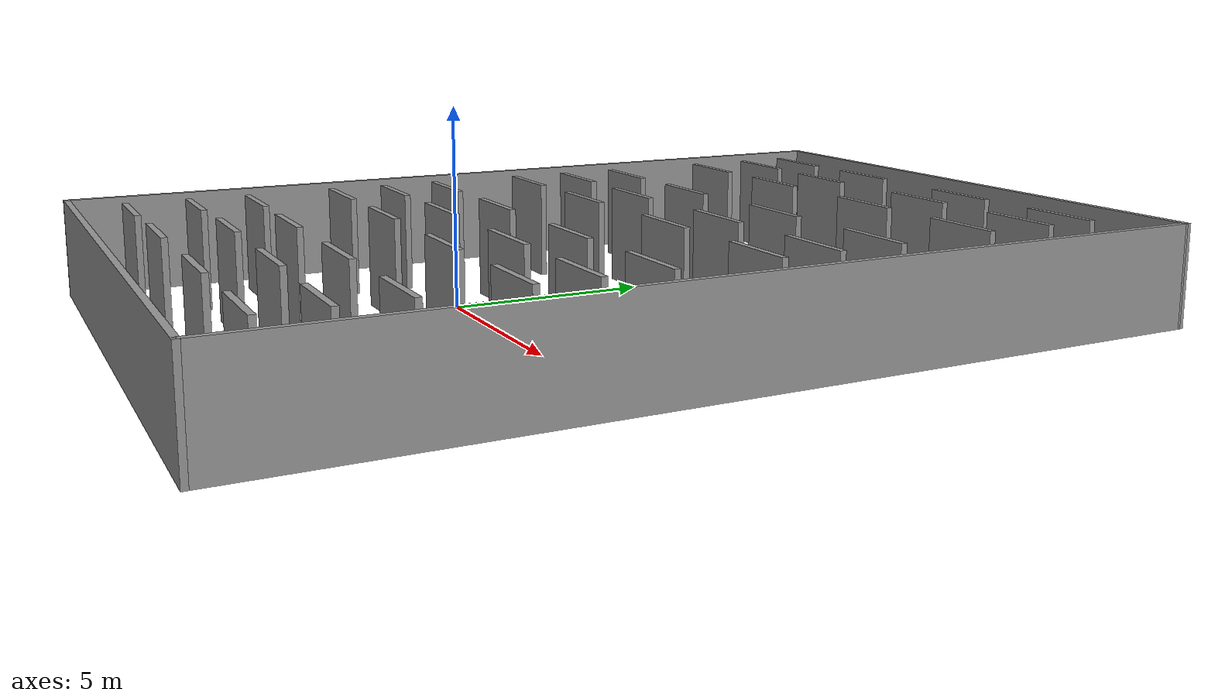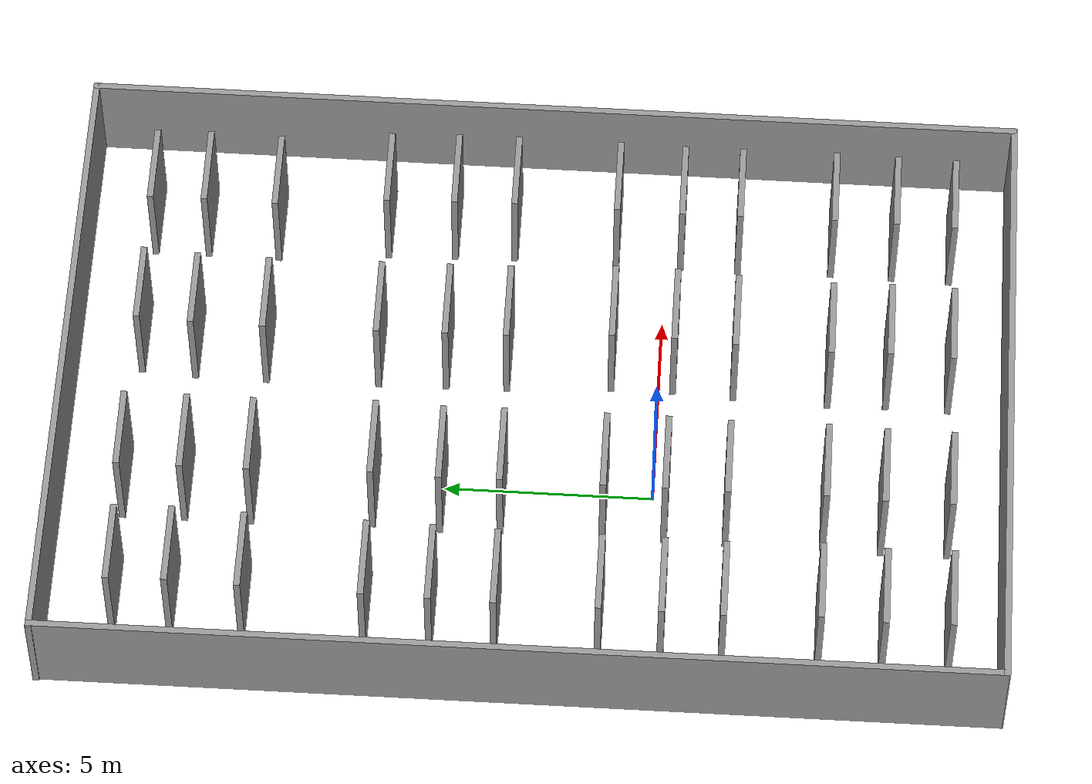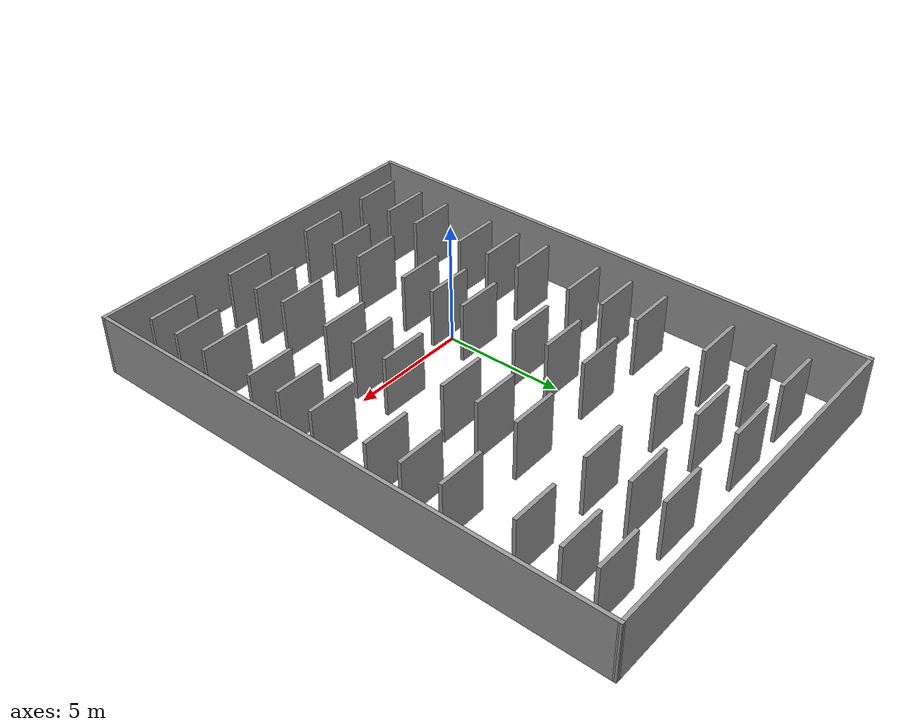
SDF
<?xml version='1.0'?>
<sdf version='1.7'>
  <model name='Warehouse_Floor'>
    <pose>1.94825 2.92606 0 0 -0 0</pose>
    <link name='Wall_101'>
      <collision name='Wall_101_Collision'>
        <geometry>
          <box>
            <size>2 0.15 2.5</size>
          </box>
        </geometry>
        <pose>0 0 1.25 0 -0 0</pose>
      </collision>
      <visual name='Wall_101_Visual'>
        <pose>0 0 1.25 0 -0 0</pose>
        <geometry>
          <box>
            <size>2 0.15 2.5</size>
          </box>
        </geometry>
        <material>
          <script>
            <uri>file://media/materials/scripts/gazebo.material</uri>
            <name>Gazebo/Grey</name>
          </script>
          <ambient>1 1 1 1</ambient>
        </material>
        <meta>
          <layer>0</layer>
        </meta>
      </visual>
      <pose>5.65636 3.91872 0 0 -0 0</pose>
    </link>
    <link name='Wall_103'>
      <collision name='Wall_103_Collision'>
        <geometry>
          <box>
            <size>2 0.15 2.5</size>
          </box>
        </geometry>
        <pose>0 0 1.25 0 -0 0</pose>
      </collision>
      <visual name='Wall_103_Visual'>
        <pose>0 0 1.25 0 -0 0</pose>
        <geometry>
          <box>
            <size>2 0.15 2.5</size>
          </box>
        </geometry>
        <material>
          <script>
            <uri>file://media/materials/scripts/gazebo.material</uri>
            <name>Gazebo/Grey</name>
          </script>
          <ambient>1 1 1 1</ambient>
        </material>
        <meta>
          <layer>0</layer>
        </meta>
      </visual>
      <pose>5.71515 2.27259 0 0 -0 0</pose>
    </link>
    <link name='Wall_105'>
      <collision name='Wall_105_Collision'>
        <geometry>
          <box>
            <size>2 0.15 2.5</size>
          </box>
        </geometry>
        <pose>0 0 1.25 0 -0 0</pose>
      </collision>
      <visual name='Wall_105_Visual'>
        <pose>0 0 1.25 0 -0 0</pose>
        <geometry>
          <box>
            <size>2 0.15 2.5</size>
          </box>
        </geometry>
        <material>
          <script>
            <uri>file://media/materials/scripts/gazebo.material</uri>
            <name>Gazebo/Grey</name>
          </script>
          <ambient>1 1 1 1</ambient>
        </material>
        <meta>
          <layer>0</layer>
        </meta>
      </visual>
      <pose>5.74455 0.80283 0 0 -0 0</pose>
    </link>
    <link name='Wall_107'>
      <collision name='Wall_107_Collision'>
        <geometry>
          <box>
            <size>2 0.15 2.5</size>
          </box>
        </geometry>
        <pose>0 0 1.25 0 -0 0</pose>
      </collision>
      <visual name='Wall_107_Visual'>
        <pose>0 0 1.25 0 -0 0</pose>
        <geometry>
          <box>
            <size>2 0.15 2.5</size>
          </box>
        </geometry>
        <material>
          <script>
            <uri>file://media/materials/scripts/gazebo.material</uri>
            <name>Gazebo/Grey</name>
          </script>
          <ambient>1 1 1 1</ambient>
        </material>
        <meta>
          <layer>0</layer>
        </meta>
      </visual>
      <pose>5.71515 -1.69576 0 0 -0 0</pose>
    </link>
    <link name='Wall_109'>
      <collision name='Wall_109_Collision'>
        <geometry>
          <box>
            <size>2 0.15 2.5</size>
          </box>
        </geometry>
        <pose>0 0 1.25 0 -0 0</pose>
      </collision>
      <visual name='Wall_109_Visual'>
        <pose>0 0 1.25 0 -0 0</pose>
        <geometry>
          <box>
            <size>2 0.15 2.5</size>
          </box>
        </geometry>
        <material>
          <script>
            <uri>file://media/materials/scripts/gazebo.material</uri>
            <name>Gazebo/Grey</name>
          </script>
          <ambient>1 1 1 1</ambient>
        </material>
        <meta>
          <layer>0</layer>
        </meta>
      </visual>
      <pose>5.68576 -3.2831 0 0 -0 0</pose>
    </link>
    <link name='Wall_11'>
      <collision name='Wall_11_Collision'>
        <geometry>
          <box>
            <size>22.75 0.15 2.5</size>
          </box>
        </geometry>
        <pose>0 0 1.25 0 -0 0</pose>
      </collision>
      <visual name='Wall_11_Visual'>
        <pose>0 0 1.25 0 -0 0</pose>
        <geometry>
          <box>
            <size>22.75 0.15 2.5</size>
          </box>
        </geometry>
        <material>
          <script>
            <uri>file://media/materials/scripts/gazebo.material</uri>
            <name>Gazebo/Grey</name>
          </script>
          <ambient>1 1 1 1</ambient>
        </material>
        <meta>
          <layer>0</layer>
        </meta>
      </visual>
      <pose>-7.6457 0.007216 0 0 -0 -1.5708</pose>
    </link>
    <link name='Wall_111'>
      <collision name='Wall_111_Collision'>
        <geometry>
          <box>
            <size>2 0.15 2.5</size>
          </box>
        </geometry>
        <pose>0 0 1.25 0 -0 0</pose>
      </collision>
      <visual name='Wall_111_Visual'>
        <pose>0 0 1.25 0 -0 0</pose>
        <geometry>
          <box>
            <size>2 0.15 2.5</size>
          </box>
        </geometry>
        <material>
          <script>
            <uri>file://media/materials/scripts/gazebo.material</uri>
            <name>Gazebo/Grey</name>
          </script>
          <ambient>1 1 1 1</ambient>
        </material>
        <meta>
          <layer>0</layer>
        </meta>
      </visual>
      <pose>5.68576 -4.69407 0 0 -0 0</pose>
    </link>
    <link name='Wall_113'>
      <collision name='Wall_113_Collision'>
        <geometry>
          <box>
            <size>2 0.15 2.5</size>
          </box>
        </geometry>
        <pose>0 0 1.25 0 -0 0</pose>
      </collision>
      <visual name='Wall_113_Visual'>
        <pose>0 0 1.25 0 -0 0</pose>
        <geometry>
          <box>
            <size>2 0.15 2.5</size>
          </box>
        </geometry>
        <material>
          <script>
            <uri>file://media/materials/scripts/gazebo.material</uri>
            <name>Gazebo/Grey</name>
          </script>
          <ambient>1 1 1 1</ambient>
        </material>
        <meta>
          <layer>0</layer>
        </meta>
      </visual>
      <pose>5.71515 -6.98689 0 0 -0 0</pose>
    </link>
    <link name='Wall_115'>
      <collision name='Wall_115_Collision'>
        <geometry>
          <box>
            <size>2 0.15 2.5</size>
          </box>
        </geometry>
        <pose>0 0 1.25 0 -0 0</pose>
      </collision>
      <visual name='Wall_115_Visual'>
        <pose>0 0 1.25 0 -0 0</pose>
        <geometry>
          <box>
            <size>2 0.15 2.5</size>
          </box>
        </geometry>
        <material>
          <script>
            <uri>file://media/materials/scripts/gazebo.material</uri>
            <name>Gazebo/Grey</name>
          </script>
          <ambient>1 1 1 1</ambient>
        </material>
        <meta>
          <layer>0</layer>
        </meta>
      </visual>
      <pose>5.68576 -8.48605 0 0 -0 0</pose>
    </link>
    <link name='Wall_117'>
      <collision name='Wall_117_Collision'>
        <geometry>
          <box>
            <size>2 0.15 2.5</size>
          </box>
        </geometry>
        <pose>0 0 1.25 0 -0 0</pose>
      </collision>
      <visual name='Wall_117_Visual'>
        <pose>0 0 1.25 0 -0 0</pose>
        <geometry>
          <box>
            <size>2 0.15 2.5</size>
          </box>
        </geometry>
        <material>
          <script>
            <uri>file://media/materials/scripts/gazebo.material</uri>
            <name>Gazebo/Grey</name>
          </script>
          <ambient>1 1 1 1</ambient>
        </material>
        <meta>
          <layer>0</layer>
        </meta>
      </visual>
      <pose>5.65636 -9.89701 0 0 -0 0</pose>
    </link>
    <link name='Wall_12'>
      <collision name='Wall_12_Collision'>
        <geometry>
          <box>
            <size>15.4118 0.15 2.5</size>
          </box>
        </geometry>
        <pose>0 0 1.25 0 -0 0</pose>
      </collision>
      <visual name='Wall_12_Visual'>
        <pose>0 0 1.25 0 -0 0</pose>
        <geometry>
          <box>
            <size>15.4118 0.15 2.5</size>
          </box>
        </geometry>
        <material>
          <script>
            <uri>file://media/materials/scripts/gazebo.material</uri>
            <name>Gazebo/Grey</name>
          </script>
          <ambient>1 1 1 1</ambient>
        </material>
        <meta>
          <layer>0</layer>
        </meta>
      </visual>
      <pose>-0.014795 -11.3001 0 0 -0 -0.000954</pose>
    </link>
    <link name='Wall_13'>
      <collision name='Wall_13_Collision'>
        <geometry>
          <box>
            <size>22.7352 0.15 2.5</size>
          </box>
        </geometry>
        <pose>0 0 1.25 0 -0 0</pose>
      </collision>
      <visual name='Wall_13_Visual'>
        <pose>0 0 1.25 0 -0 0</pose>
        <geometry>
          <box>
            <size>22.7352 0.15 2.5</size>
          </box>
        </geometry>
        <material>
          <script>
            <uri>file://media/materials/scripts/gazebo.material</uri>
            <name>Gazebo/Grey</name>
          </script>
          <ambient>1 1 1 1</ambient>
        </material>
        <meta>
          <layer>0</layer>
        </meta>
      </visual>
      <pose>7.64551 0.014636 0 0 -0 1.56819</pose>
    </link>
    <link name='Wall_14'>
      <collision name='Wall_14_Collision'>
        <geometry>
          <box>
            <size>15.5 0.15 2.5</size>
          </box>
        </geometry>
        <pose>0 0 1.25 0 -0 0</pose>
      </collision>
      <visual name='Wall_14_Visual'>
        <pose>0 0 1.25 0 -0 0</pose>
        <geometry>
          <box>
            <size>15.5 0.15 2.5</size>
          </box>
        </geometry>
        <material>
          <script>
            <uri>file://media/materials/scripts/gazebo.material</uri>
            <name>Gazebo/Grey</name>
          </script>
          <ambient>1 1 1 1</ambient>
        </material>
        <meta>
          <layer>0</layer>
        </meta>
      </visual>
      <pose>-9.7e-05 11.3072 0 0 -0 3.14159</pose>
    </link>
    <link name='Wall_16'>
      <collision name='Wall_16_Collision'>
        <geometry>
          <box>
            <size>2 0.15 2.5</size>
          </box>
        </geometry>
        <pose>0 0 1.25 0 -0 0</pose>
      </collision>
      <visual name='Wall_16_Visual'>
        <pose>0 0 1.25 0 -0 0</pose>
        <geometry>
          <box>
            <size>2 0.15 2.5</size>
          </box>
        </geometry>
        <material>
          <script>
            <uri>file://media/materials/scripts/gazebo.material</uri>
            <name>Gazebo/Grey</name>
          </script>
          <ambient>1 1 1 1</ambient>
        </material>
        <meta>
          <layer>0</layer>
        </meta>
      </visual>
      <pose>-5.33885 9.66159 0 0 -0 0</pose>
    </link>
    <link name='Wall_18'>
      <collision name='Wall_18_Collision'>
        <geometry>
          <box>
            <size>2 0.15 2.5</size>
          </box>
        </geometry>
        <pose>0 0 1.25 0 -0 0</pose>
      </collision>
      <visual name='Wall_18_Visual'>
        <pose>0 0 1.25 0 -0 0</pose>
        <geometry>
          <box>
            <size>2 0.15 2.5</size>
          </box>
        </geometry>
        <material>
          <script>
            <uri>file://media/materials/scripts/gazebo.material</uri>
            <name>Gazebo/Grey</name>
          </script>
          <ambient>1 1 1 1</ambient>
        </material>
        <meta>
          <layer>0</layer>
        </meta>
      </visual>
      <pose>-2.19441 9.73277 0 0 -0 0</pose>
    </link>
    <link name='Wall_20'>
      <collision name='Wall_20_Collision'>
        <geometry>
          <box>
            <size>2 0.15 2.5</size>
          </box>
        </geometry>
        <pose>0 0 1.25 0 -0 0</pose>
      </collision>
      <visual name='Wall_20_Visual'>
        <pose>0 0 1.25 0 -0 0</pose>
        <geometry>
          <box>
            <size>2 0.15 2.5</size>
          </box>
        </geometry>
        <material>
          <script>
            <uri>file://media/materials/scripts/gazebo.material</uri>
            <name>Gazebo/Grey</name>
          </script>
          <ambient>1 1 1 1</ambient>
        </material>
        <meta>
          <layer>0</layer>
        </meta>
      </visual>
      <pose>1.95267 9.66573 0 0 -0 0</pose>
    </link>
    <link name='Wall_22'>
      <collision name='Wall_22_Collision'>
        <geometry>
          <box>
            <size>2 0.15 2.5</size>
          </box>
        </geometry>
        <pose>0 0 1.25 0 -0 0</pose>
      </collision>
      <visual name='Wall_22_Visual'>
        <pose>0 0 1.25 0 -0 0</pose>
        <geometry>
          <box>
            <size>2 0.15 2.5</size>
          </box>
        </geometry>
        <material>
          <script>
            <uri>file://media/materials/scripts/gazebo.material</uri>
            <name>Gazebo/Grey</name>
          </script>
          <ambient>1 1 1 1</ambient>
        </material>
        <meta>
          <layer>0</layer>
        </meta>
      </visual>
      <pose>5.43187 9.67049 0 0 -0 0</pose>
    </link>
    <link name='Wall_25'>
      <collision name='Wall_25_Collision'>
        <geometry>
          <box>
            <size>2 0.15 2.5</size>
          </box>
        </geometry>
        <pose>0 0 1.25 0 -0 0</pose>
      </collision>
      <visual name='Wall_25_Visual'>
        <pose>0 0 1.25 0 -0 0</pose>
        <geometry>
          <box>
            <size>2 0.15 2.5</size>
          </box>
        </geometry>
        <material>
          <script>
            <uri>file://media/materials/scripts/gazebo.material</uri>
            <name>Gazebo/Grey</name>
          </script>
          <ambient>1 1 1 1</ambient>
        </material>
        <meta>
          <layer>0</layer>
        </meta>
      </visual>
      <pose>-5.30804 8.2986 0 0 -0 0</pose>
    </link>
    <link name='Wall_27'>
      <collision name='Wall_27_Collision'>
        <geometry>
          <box>
            <size>2 0.15 2.5</size>
          </box>
        </geometry>
        <pose>0 0 1.25 0 -0 0</pose>
      </collision>
      <visual name='Wall_27_Visual'>
        <pose>0 0 1.25 0 -0 0</pose>
        <geometry>
          <box>
            <size>2 0.15 2.5</size>
          </box>
        </geometry>
        <material>
          <script>
            <uri>file://media/materials/scripts/gazebo.material</uri>
            <name>Gazebo/Grey</name>
          </script>
          <ambient>1 1 1 1</ambient>
        </material>
        <meta>
          <layer>0</layer>
        </meta>
      </visual>
      <pose>-2.19215 8.23981 0 0 -0 0</pose>
    </link>
    <link name='Wall_29'>
      <collision name='Wall_29_Collision'>
        <geometry>
          <box>
            <size>2 0.15 2.5</size>
          </box>
        </geometry>
        <pose>0 0 1.25 0 -0 0</pose>
      </collision>
      <visual name='Wall_29_Visual'>
        <pose>0 0 1.25 0 -0 0</pose>
        <geometry>
          <box>
            <size>2 0.15 2.5</size>
          </box>
        </geometry>
        <material>
          <script>
            <uri>file://media/materials/scripts/gazebo.material</uri>
            <name>Gazebo/Grey</name>
          </script>
          <ambient>1 1 1 1</ambient>
        </material>
        <meta>
          <layer>0</layer>
        </meta>
      </visual>
      <pose>1.86438 8.35739 0 0 -0 0</pose>
    </link>
    <link name='Wall_31'>
      <collision name='Wall_31_Collision'>
        <geometry>
          <box>
            <size>2 0.15 2.5</size>
          </box>
        </geometry>
        <pose>0 0 1.25 0 -0 0</pose>
      </collision>
      <visual name='Wall_31_Visual'>
        <pose>0 0 1.25 0 -0 0</pose>
        <geometry>
          <box>
            <size>2 0.15 2.5</size>
          </box>
        </geometry>
        <material>
          <script>
            <uri>file://media/materials/scripts/gazebo.material</uri>
            <name>Gazebo/Grey</name>
          </script>
          <ambient>1 1 1 1</ambient>
        </material>
        <meta>
          <layer>0</layer>
        </meta>
      </visual>
      <pose>5.4506 8.35739 0 0 -0 0</pose>
    </link>
    <link name='Wall_33'>
      <collision name='Wall_33_Collision'>
        <geometry>
          <box>
            <size>2 0.15 2.5</size>
          </box>
        </geometry>
        <pose>0 0 1.25 0 -0 0</pose>
      </collision>
      <visual name='Wall_33_Visual'>
        <pose>0 0 1.25 0 -0 0</pose>
        <geometry>
          <box>
            <size>2 0.15 2.5</size>
          </box>
        </geometry>
        <material>
          <script>
            <uri>file://media/materials/scripts/gazebo.material</uri>
            <name>Gazebo/Grey</name>
          </script>
          <ambient>1 1 1 1</ambient>
        </material>
        <meta>
          <layer>0</layer>
        </meta>
      </visual>
      <pose>-5.36683 6.59368 0 0 -0 0</pose>
    </link>
    <link name='Wall_35'>
      <collision name='Wall_35_Collision'>
        <geometry>
          <box>
            <size>2 0.15 2.5</size>
          </box>
        </geometry>
        <pose>0 0 1.25 0 -0 0</pose>
      </collision>
      <visual name='Wall_35_Visual'>
        <pose>0 0 1.25 0 -0 0</pose>
        <geometry>
          <box>
            <size>2 0.15 2.5</size>
          </box>
        </geometry>
        <material>
          <script>
            <uri>file://media/materials/scripts/gazebo.material</uri>
            <name>Gazebo/Grey</name>
          </script>
          <ambient>1 1 1 1</ambient>
        </material>
        <meta>
          <layer>0</layer>
        </meta>
      </visual>
      <pose>-2.19215 6.65247 0 0 -0 0</pose>
    </link>
    <link name='Wall_37'>
      <collision name='Wall_37_Collision'>
        <geometry>
          <box>
            <size>2 0.15 2.5</size>
          </box>
        </geometry>
        <pose>0 0 1.25 0 -0 0</pose>
      </collision>
      <visual name='Wall_37_Visual'>
        <pose>0 0 1.25 0 -0 0</pose>
        <geometry>
          <box>
            <size>2 0.15 2.5</size>
          </box>
        </geometry>
        <material>
          <script>
            <uri>file://media/materials/scripts/gazebo.material</uri>
            <name>Gazebo/Grey</name>
          </script>
          <ambient>1 1 1 1</ambient>
        </material>
        <meta>
          <layer>0</layer>
        </meta>
      </visual>
      <pose>1.83499 6.62308 0 0 -0 0</pose>
    </link>
    <link name='Wall_39'>
      <collision name='Wall_39_Collision'>
        <geometry>
          <box>
            <size>2 0.15 2.5</size>
          </box>
        </geometry>
        <pose>0 0 1.25 0 -0 0</pose>
      </collision>
      <visual name='Wall_39_Visual'>
        <pose>0 0 1.25 0 -0 0</pose>
        <geometry>
          <box>
            <size>2 0.15 2.5</size>
          </box>
        </geometry>
        <material>
          <script>
            <uri>file://media/materials/scripts/gazebo.material</uri>
            <name>Gazebo/Grey</name>
          </script>
          <ambient>1 1 1 1</ambient>
        </material>
        <meta>
          <layer>0</layer>
        </meta>
      </visual>
      <pose>5.4212 6.62308 0 0 -0 0</pose>
    </link>
    <link name='Wall_41'>
      <collision name='Wall_41_Collision'>
        <geometry>
          <box>
            <size>2 0.15 2.5</size>
          </box>
        </geometry>
        <pose>0 0 1.25 0 -0 0</pose>
      </collision>
      <visual name='Wall_41_Visual'>
        <pose>0 0 1.25 0 -0 0</pose>
        <geometry>
          <box>
            <size>2 0.15 2.5</size>
          </box>
        </geometry>
        <material>
          <script>
            <uri>file://media/materials/scripts/gazebo.material</uri>
            <name>Gazebo/Grey</name>
          </script>
          <ambient>1 1 1 1</ambient>
        </material>
        <meta>
          <layer>0</layer>
        </meta>
      </visual>
      <pose>-5.42562 3.71295 0 0 -0 0</pose>
    </link>
    <link name='Wall_46'>
      <collision name='Wall_46_Collision'>
        <geometry>
          <box>
            <size>2 0.15 2.5</size>
          </box>
        </geometry>
        <pose>0 0 1.25 0 -0 0</pose>
      </collision>
      <visual name='Wall_46_Visual'>
        <pose>0 0 1.25 0 -0 0</pose>
        <geometry>
          <box>
            <size>2 0.15 2.5</size>
          </box>
        </geometry>
        <material>
          <script>
            <uri>file://media/materials/scripts/gazebo.material</uri>
            <name>Gazebo/Grey</name>
          </script>
          <ambient>1 1 1 1</ambient>
        </material>
        <meta>
          <layer>0</layer>
        </meta>
      </visual>
      <pose>-5.45501 2.15501 0 0 -0 0</pose>
    </link>
    <link name='Wall_48'>
      <collision name='Wall_48_Collision'>
        <geometry>
          <box>
            <size>2 0.15 2.5</size>
          </box>
        </geometry>
        <pose>0 0 1.25 0 -0 0</pose>
      </collision>
      <visual name='Wall_48_Visual'>
        <pose>0 0 1.25 0 -0 0</pose>
        <geometry>
          <box>
            <size>2 0.15 2.5</size>
          </box>
        </geometry>
        <material>
          <script>
            <uri>file://media/materials/scripts/gazebo.material</uri>
            <name>Gazebo/Grey</name>
          </script>
          <ambient>1 1 1 1</ambient>
        </material>
        <meta>
          <layer>0</layer>
        </meta>
      </visual>
      <pose>-5.48441 0.626459 0 0 -0 0</pose>
    </link>
    <link name='Wall_50'>
      <collision name='Wall_50_Collision'>
        <geometry>
          <box>
            <size>2 0.15 2.5</size>
          </box>
        </geometry>
        <pose>0 0 1.25 0 -0 0</pose>
      </collision>
      <visual name='Wall_50_Visual'>
        <pose>0 0 1.25 0 -0 0</pose>
        <geometry>
          <box>
            <size>2 0.15 2.5</size>
          </box>
        </geometry>
        <material>
          <script>
            <uri>file://media/materials/scripts/gazebo.material</uri>
            <name>Gazebo/Grey</name>
          </script>
          <ambient>1 1 1 1</ambient>
        </material>
        <meta>
          <layer>0</layer>
        </meta>
      </visual>
      <pose>-5.48441 -1.81334 0 0 -0 0</pose>
    </link>
    <link name='Wall_52'>
      <collision name='Wall_52_Collision'>
        <geometry>
          <box>
            <size>2 0.15 2.5</size>
          </box>
        </geometry>
        <pose>0 0 1.25 0 -0 0</pose>
      </collision>
      <visual name='Wall_52_Visual'>
        <pose>0 0 1.25 0 -0 0</pose>
        <geometry>
          <box>
            <size>2 0.15 2.5</size>
          </box>
        </geometry>
        <material>
          <script>
            <uri>file://media/materials/scripts/gazebo.material</uri>
            <name>Gazebo/Grey</name>
          </script>
          <ambient>1 1 1 1</ambient>
        </material>
        <meta>
          <layer>0</layer>
        </meta>
      </visual>
      <pose>-5.48441 -3.2831 0 0 -0 0</pose>
    </link>
    <link name='Wall_55'>
      <collision name='Wall_55_Collision'>
        <geometry>
          <box>
            <size>2 0.15 2.5</size>
          </box>
        </geometry>
        <pose>0 0 1.25 0 -0 0</pose>
      </collision>
      <visual name='Wall_55_Visual'>
        <pose>0 0 1.25 0 -0 0</pose>
        <geometry>
          <box>
            <size>2 0.15 2.5</size>
          </box>
        </geometry>
        <material>
          <script>
            <uri>file://media/materials/scripts/gazebo.material</uri>
            <name>Gazebo/Grey</name>
          </script>
          <ambient>1 1 1 1</ambient>
        </material>
        <meta>
          <layer>0</layer>
        </meta>
      </visual>
      <pose>-5.5138 -4.72346 0 0 -0 0</pose>
    </link>
    <link name='Wall_57'>
      <collision name='Wall_57_Collision'>
        <geometry>
          <box>
            <size>2 0.15 2.5</size>
          </box>
        </geometry>
        <pose>0 0 1.25 0 -0 0</pose>
      </collision>
      <visual name='Wall_57_Visual'>
        <pose>0 0 1.25 0 -0 0</pose>
        <geometry>
          <box>
            <size>2 0.15 2.5</size>
          </box>
        </geometry>
        <material>
          <script>
            <uri>file://media/materials/scripts/gazebo.material</uri>
            <name>Gazebo/Grey</name>
          </script>
          <ambient>1 1 1 1</ambient>
        </material>
        <meta>
          <layer>0</layer>
        </meta>
      </visual>
      <pose>-5.42562 -6.98689 0 0 -0 0</pose>
    </link>
    <link name='Wall_59'>
      <collision name='Wall_59_Collision'>
        <geometry>
          <box>
            <size>2 0.15 2.5</size>
          </box>
        </geometry>
        <pose>0 0 1.25 0 -0 0</pose>
      </collision>
      <visual name='Wall_59_Visual'>
        <pose>0 0 1.25 0 -0 0</pose>
        <geometry>
          <box>
            <size>2 0.15 2.5</size>
          </box>
        </geometry>
        <material>
          <script>
            <uri>file://media/materials/scripts/gazebo.material</uri>
            <name>Gazebo/Grey</name>
          </script>
          <ambient>1 1 1 1</ambient>
        </material>
        <meta>
          <layer>0</layer>
        </meta>
      </visual>
      <pose>-5.48441 -8.48605 0 0 -0 0</pose>
    </link>
    <link name='Wall_61'>
      <collision name='Wall_61_Collision'>
        <geometry>
          <box>
            <size>2 0.15 2.5</size>
          </box>
        </geometry>
        <pose>0 0 1.25 0 -0 0</pose>
      </collision>
      <visual name='Wall_61_Visual'>
        <pose>0 0 1.25 0 -0 0</pose>
        <geometry>
          <box>
            <size>2 0.15 2.5</size>
          </box>
        </geometry>
        <material>
          <script>
            <uri>file://media/materials/scripts/gazebo.material</uri>
            <name>Gazebo/Grey</name>
          </script>
          <ambient>1 1 1 1</ambient>
        </material>
        <meta>
          <layer>0</layer>
        </meta>
      </visual>
      <pose>-5.45501 -10.044 0 0 -0 0</pose>
    </link>
    <link name='Wall_63'>
      <collision name='Wall_63_Collision'>
        <geometry>
          <box>
            <size>2 0.15 2.5</size>
          </box>
        </geometry>
        <pose>0 0 1.25 0 -0 0</pose>
      </collision>
      <visual name='Wall_63_Visual'>
        <pose>0 0 1.25 0 -0 0</pose>
        <geometry>
          <box>
            <size>2 0.15 2.5</size>
          </box>
        </geometry>
        <material>
          <script>
            <uri>file://media/materials/scripts/gazebo.material</uri>
            <name>Gazebo/Grey</name>
          </script>
          <ambient>1 1 1 1</ambient>
        </material>
        <meta>
          <layer>0</layer>
        </meta>
      </visual>
      <pose>-2.10396 3.74235 0 0 -0 0</pose>
    </link>
    <link name='Wall_65'>
      <collision name='Wall_65_Collision'>
        <geometry>
          <box>
            <size>2 0.15 2.5</size>
          </box>
        </geometry>
        <pose>0 0 1.25 0 -0 0</pose>
      </collision>
      <visual name='Wall_65_Visual'>
        <pose>0 0 1.25 0 -0 0</pose>
        <geometry>
          <box>
            <size>2 0.15 2.5</size>
          </box>
        </geometry>
        <material>
          <script>
            <uri>file://media/materials/scripts/gazebo.material</uri>
            <name>Gazebo/Grey</name>
          </script>
          <ambient>1 1 1 1</ambient>
        </material>
        <meta>
          <layer>0</layer>
        </meta>
      </visual>
      <pose>-2.16276 2.12561 0 0 -0 0</pose>
    </link>
    <link name='Wall_67'>
      <collision name='Wall_67_Collision'>
        <geometry>
          <box>
            <size>2 0.15 2.5</size>
          </box>
        </geometry>
        <pose>0 0 1.25 0 -0 0</pose>
      </collision>
      <visual name='Wall_67_Visual'>
        <pose>0 0 1.25 0 -0 0</pose>
        <geometry>
          <box>
            <size>2 0.15 2.5</size>
          </box>
        </geometry>
        <material>
          <script>
            <uri>file://media/materials/scripts/gazebo.material</uri>
            <name>Gazebo/Grey</name>
          </script>
          <ambient>1 1 1 1</ambient>
        </material>
        <meta>
          <layer>0</layer>
        </meta>
      </visual>
      <pose>-2.13336 0.685249 0 0 -0 0</pose>
    </link>
    <link name='Wall_69'>
      <collision name='Wall_69_Collision'>
        <geometry>
          <box>
            <size>2 0.15 2.5</size>
          </box>
        </geometry>
        <pose>0 0 1.25 0 -0 0</pose>
      </collision>
      <visual name='Wall_69_Visual'>
        <pose>0 0 1.25 0 -0 0</pose>
        <geometry>
          <box>
            <size>2 0.15 2.5</size>
          </box>
        </geometry>
        <material>
          <script>
            <uri>file://media/materials/scripts/gazebo.material</uri>
            <name>Gazebo/Grey</name>
          </script>
          <ambient>1 1 1 1</ambient>
        </material>
        <meta>
          <layer>0</layer>
        </meta>
      </visual>
      <pose>-2.13336 -1.75455 0 0 -0 0</pose>
    </link>
    <link name='Wall_71'>
      <collision name='Wall_71_Collision'>
        <geometry>
          <box>
            <size>2 0.15 2.5</size>
          </box>
        </geometry>
        <pose>0 0 1.25 0 -0 0</pose>
      </collision>
      <visual name='Wall_71_Visual'>
        <pose>0 0 1.25 0 -0 0</pose>
        <geometry>
          <box>
            <size>2 0.15 2.5</size>
          </box>
        </geometry>
        <material>
          <script>
            <uri>file://media/materials/scripts/gazebo.material</uri>
            <name>Gazebo/Grey</name>
          </script>
          <ambient>1 1 1 1</ambient>
        </material>
        <meta>
          <layer>0</layer>
        </meta>
      </visual>
      <pose>-2.13336 -3.22431 0 0 -0 0</pose>
    </link>
    <link name='Wall_73'>
      <collision name='Wall_73_Collision'>
        <geometry>
          <box>
            <size>2 0.15 2.5</size>
          </box>
        </geometry>
        <pose>0 0 1.25 0 -0 0</pose>
      </collision>
      <visual name='Wall_73_Visual'>
        <pose>0 0 1.25 0 -0 0</pose>
        <geometry>
          <box>
            <size>2 0.15 2.5</size>
          </box>
        </geometry>
        <material>
          <script>
            <uri>file://media/materials/scripts/gazebo.material</uri>
            <name>Gazebo/Grey</name>
          </script>
          <ambient>1 1 1 1</ambient>
        </material>
        <meta>
          <layer>0</layer>
        </meta>
      </visual>
      <pose>-2.16276 -4.69407 0 0 -0 0</pose>
    </link>
    <link name='Wall_75'>
      <collision name='Wall_75_Collision'>
        <geometry>
          <box>
            <size>2 0.15 2.5</size>
          </box>
        </geometry>
        <pose>0 0 1.25 0 -0 0</pose>
      </collision>
      <visual name='Wall_75_Visual'>
        <pose>0 0 1.25 0 -0 0</pose>
        <geometry>
          <box>
            <size>2 0.15 2.5</size>
          </box>
        </geometry>
        <material>
          <script>
            <uri>file://media/materials/scripts/gazebo.material</uri>
            <name>Gazebo/Grey</name>
          </script>
          <ambient>1 1 1 1</ambient>
        </material>
        <meta>
          <layer>0</layer>
        </meta>
      </visual>
      <pose>-2.13336 -7.01629 0 0 -0 0</pose>
    </link>
    <link name='Wall_77'>
      <collision name='Wall_77_Collision'>
        <geometry>
          <box>
            <size>2 0.15 2.5</size>
          </box>
        </geometry>
        <pose>0 0 1.25 0 -0 0</pose>
      </collision>
      <visual name='Wall_77_Visual'>
        <pose>0 0 1.25 0 -0 0</pose>
        <geometry>
          <box>
            <size>2 0.15 2.5</size>
          </box>
        </geometry>
        <material>
          <script>
            <uri>file://media/materials/scripts/gazebo.material</uri>
            <name>Gazebo/Grey</name>
          </script>
          <ambient>1 1 1 1</ambient>
        </material>
        <meta>
          <layer>0</layer>
        </meta>
      </visual>
      <pose>-2.19215 -8.39786 0 0 -0 0</pose>
    </link>
    <link name='Wall_79'>
      <collision name='Wall_79_Collision'>
        <geometry>
          <box>
            <size>2 0.15 2.5</size>
          </box>
        </geometry>
        <pose>0 0 1.25 0 -0 0</pose>
      </collision>
      <visual name='Wall_79_Visual'>
        <pose>0 0 1.25 0 -0 0</pose>
        <geometry>
          <box>
            <size>2 0.15 2.5</size>
          </box>
        </geometry>
        <material>
          <script>
            <uri>file://media/materials/scripts/gazebo.material</uri>
            <name>Gazebo/Grey</name>
          </script>
          <ambient>1 1 1 1</ambient>
        </material>
        <meta>
          <layer>0</layer>
        </meta>
      </visual>
      <pose>-2.19215 -9.9852 0 0 -0 0</pose>
    </link>
    <link name='Wall_82'>
      <collision name='Wall_82_Collision'>
        <geometry>
          <box>
            <size>2 0.15 2.5</size>
          </box>
        </geometry>
        <pose>0 0 1.25 0 -0 0</pose>
      </collision>
      <visual name='Wall_82_Visual'>
        <pose>0 0 1.25 0 -0 0</pose>
        <geometry>
          <box>
            <size>2 0.15 2.5</size>
          </box>
        </geometry>
        <material>
          <script>
            <uri>file://media/materials/scripts/gazebo.material</uri>
            <name>Gazebo/Grey</name>
          </script>
          <ambient>1 1 1 1</ambient>
        </material>
        <meta>
          <layer>0</layer>
        </meta>
      </visual>
      <pose>1.86438 3.88932 0 0 -0 0</pose>
    </link>
    <link name='Wall_84'>
      <collision name='Wall_84_Collision'>
        <geometry>
          <box>
            <size>2 0.15 2.5</size>
          </box>
        </geometry>
        <pose>0 0 1.25 0 -0 0</pose>
      </collision>
      <visual name='Wall_84_Visual'>
        <pose>0 0 1.25 0 -0 0</pose>
        <geometry>
          <box>
            <size>2 0.15 2.5</size>
          </box>
        </geometry>
        <material>
          <script>
            <uri>file://media/materials/scripts/gazebo.material</uri>
            <name>Gazebo/Grey</name>
          </script>
          <ambient>1 1 1 1</ambient>
        </material>
        <meta>
          <layer>0</layer>
        </meta>
      </visual>
      <pose>1.89378 2.24319 0 0 -0 0</pose>
    </link>
    <link name='Wall_86'>
      <collision name='Wall_86_Collision'>
        <geometry>
          <box>
            <size>2 0.15 2.5</size>
          </box>
        </geometry>
        <pose>0 0 1.25 0 -0 0</pose>
      </collision>
      <visual name='Wall_86_Visual'>
        <pose>0 0 1.25 0 -0 0</pose>
        <geometry>
          <box>
            <size>2 0.15 2.5</size>
          </box>
        </geometry>
        <material>
          <script>
            <uri>file://media/materials/scripts/gazebo.material</uri>
            <name>Gazebo/Grey</name>
          </script>
          <ambient>1 1 1 1</ambient>
        </material>
        <meta>
          <layer>0</layer>
        </meta>
      </visual>
      <pose>1.92318 0.773435 0 0 -0 0</pose>
    </link>
    <link name='Wall_88'>
      <collision name='Wall_88_Collision'>
        <geometry>
          <box>
            <size>2 0.15 2.5</size>
          </box>
        </geometry>
        <pose>0 0 1.25 0 -0 0</pose>
      </collision>
      <visual name='Wall_88_Visual'>
        <pose>0 0 1.25 0 -0 0</pose>
        <geometry>
          <box>
            <size>2 0.15 2.5</size>
          </box>
        </geometry>
        <material>
          <script>
            <uri>file://media/materials/scripts/gazebo.material</uri>
            <name>Gazebo/Grey</name>
          </script>
          <ambient>1 1 1 1</ambient>
        </material>
        <meta>
          <layer>0</layer>
        </meta>
      </visual>
      <pose>2.07015 -1.75455 0 0 -0 0</pose>
    </link>
    <link name='Wall_90'>
      <collision name='Wall_90_Collision'>
        <geometry>
          <box>
            <size>2 0.15 2.5</size>
          </box>
        </geometry>
        <pose>0 0 1.25 0 -0 0</pose>
      </collision>
      <visual name='Wall_90_Visual'>
        <pose>0 0 1.25 0 -0 0</pose>
        <geometry>
          <box>
            <size>2 0.15 2.5</size>
          </box>
        </geometry>
        <material>
          <script>
            <uri>file://media/materials/scripts/gazebo.material</uri>
            <name>Gazebo/Grey</name>
          </script>
          <ambient>1 1 1 1</ambient>
        </material>
        <meta>
          <layer>0</layer>
        </meta>
      </visual>
      <pose>2.07015 -3.25371 0 0 -0 0</pose>
    </link>
    <link name='Wall_92'>
      <collision name='Wall_92_Collision'>
        <geometry>
          <box>
            <size>2 0.15 2.5</size>
          </box>
        </geometry>
        <pose>0 0 1.25 0 -0 0</pose>
      </collision>
      <visual name='Wall_92_Visual'>
        <pose>0 0 1.25 0 -0 0</pose>
        <geometry>
          <box>
            <size>2 0.15 2.5</size>
          </box>
        </geometry>
        <material>
          <script>
            <uri>file://media/materials/scripts/gazebo.material</uri>
            <name>Gazebo/Grey</name>
          </script>
          <ambient>1 1 1 1</ambient>
        </material>
        <meta>
          <layer>0</layer>
        </meta>
      </visual>
      <pose>1.98196 -4.72346 0 0 -0 0</pose>
    </link>
    <link name='Wall_94'>
      <collision name='Wall_94_Collision'>
        <geometry>
          <box>
            <size>2 0.15 2.5</size>
          </box>
        </geometry>
        <pose>0 0 1.25 0 -0 0</pose>
      </collision>
      <visual name='Wall_94_Visual'>
        <pose>0 0 1.25 0 -0 0</pose>
        <geometry>
          <box>
            <size>2 0.15 2.5</size>
          </box>
        </geometry>
        <material>
          <script>
            <uri>file://media/materials/scripts/gazebo.material</uri>
            <name>Gazebo/Grey</name>
          </script>
          <ambient>1 1 1 1</ambient>
        </material>
        <meta>
          <layer>0</layer>
        </meta>
      </visual>
      <pose>1.89378 -7.01629 0 0 -0 0</pose>
    </link>
    <link name='Wall_96'>
      <collision name='Wall_96_Collision'>
        <geometry>
          <box>
            <size>2 0.15 2.5</size>
          </box>
        </geometry>
        <pose>0 0 1.25 0 -0 0</pose>
      </collision>
      <visual name='Wall_96_Visual'>
        <pose>0 0 1.25 0 -0 0</pose>
        <geometry>
          <box>
            <size>2 0.15 2.5</size>
          </box>
        </geometry>
        <material>
          <script>
            <uri>file://media/materials/scripts/gazebo.material</uri>
            <name>Gazebo/Grey</name>
          </script>
          <ambient>1 1 1 1</ambient>
        </material>
        <meta>
          <layer>0</layer>
        </meta>
      </visual>
      <pose>1.92318 -8.42726 0 0 -0 0</pose>
    </link>
    <link name='Wall_98'>
      <collision name='Wall_98_Collision'>
        <geometry>
          <box>
            <size>2 0.15 2.5</size>
          </box>
        </geometry>
        <pose>0 0 1.25 0 -0 0</pose>
      </collision>
      <visual name='Wall_98_Visual'>
        <pose>0 0 1.25 0 -0 0</pose>
        <geometry>
          <box>
            <size>2 0.15 2.5</size>
          </box>
        </geometry>
        <material>
          <script>
            <uri>file://media/materials/scripts/gazebo.material</uri>
            <name>Gazebo/Grey</name>
          </script>
          <ambient>1 1 1 1</ambient>
        </material>
        <meta>
          <layer>0</layer>
        </meta>
      </visual>
      <pose>1.89378 -9.92641 0 0 -0 0</pose>
    </link>
    <static>1</static>
  </model>
</sdf>
